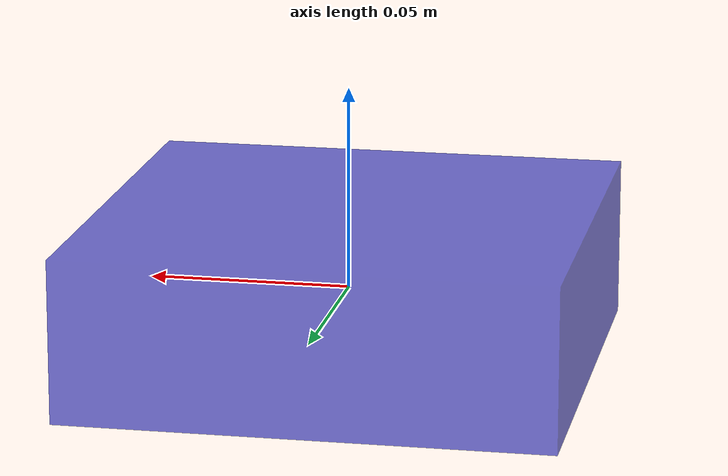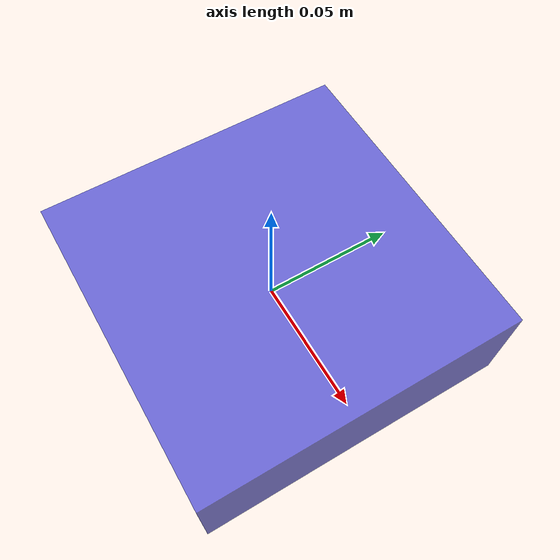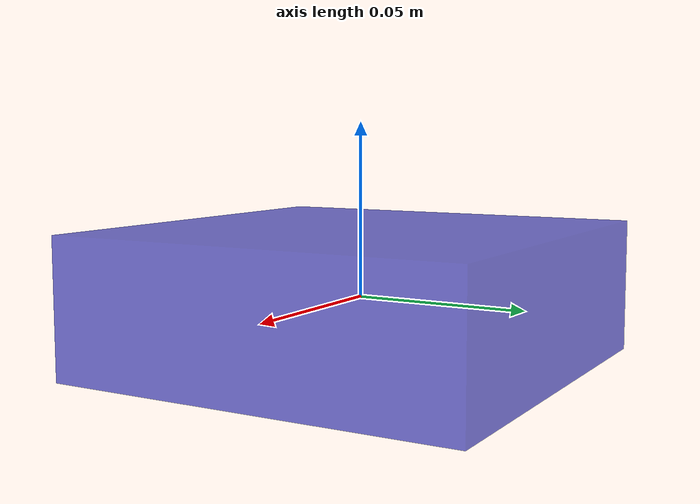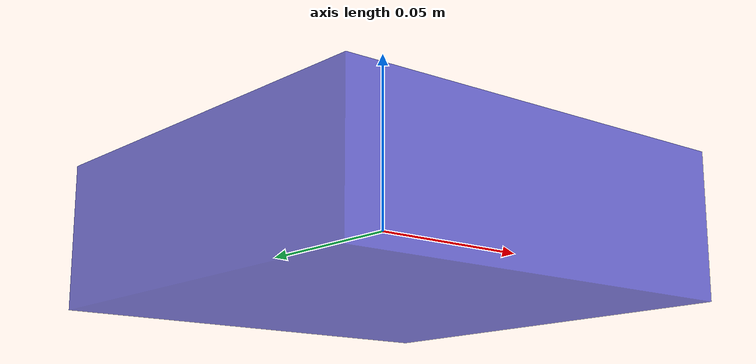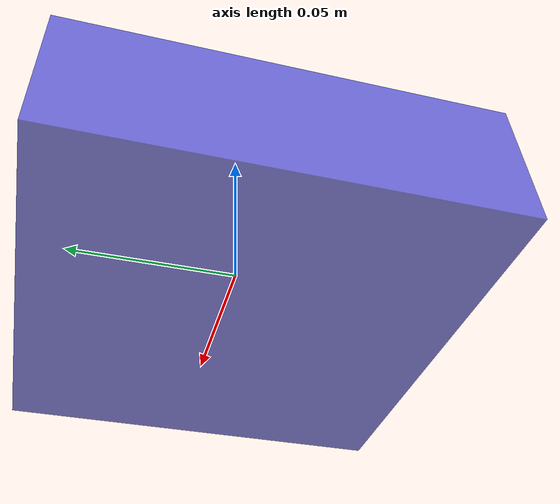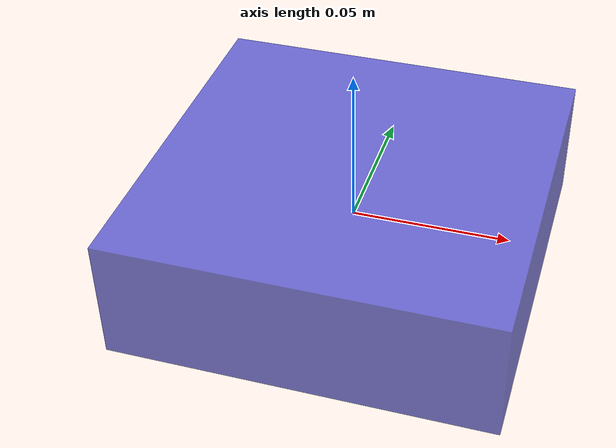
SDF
<?xml version="1.0" ?>
<sdf version="1.10">
  <model name="sprint_camera_rig">
    <static>true</static>
    <link name="camera_link">
      <visual name="body">
        <geometry>
          <box><size>0.12 0.12 0.04</size></box>
        </geometry>
        <material>
          <ambient>0.2 0.2 0.8 0.7</ambient>
          <diffuse>0.2 0.2 0.8 0.7</diffuse>
        </material>
      </visual>

      <sensor name="down_camera" type="camera">
        <!-- 5 cm below link origin, pitched 90° to face straight down -->
        <pose>0 0 -0.05 0 1.5707963 0</pose>
        <camera name="down_camera">
          <!-- 110° horizontal FOV in radians -->
          <horizontal_fov>1.9199</horizontal_fov>
          <image>
            <width>640</width>
            <height>480</height>
            <format>R8G8B8</format>
          </image>
          <clip>
            <near>0.05</near>
            <far>50.0</far>
          </clip>
          <noise>
            <type>gaussian</type>
            <mean>0.0</mean>
            <stddev>0.003</stddev>
          </noise>
        </camera>
        <always_on>1</always_on>
        <update_rate>60</update_rate>
        <visualize>false</visualize>
        <!-- Gazebo-side topic; bridged to /drone/camera/down/image_raw by sim_gazebo.launch.py -->
        <topic>/gz/drone/camera/down</topic>
      </sensor>
    </link>
  </model>
</sdf>
